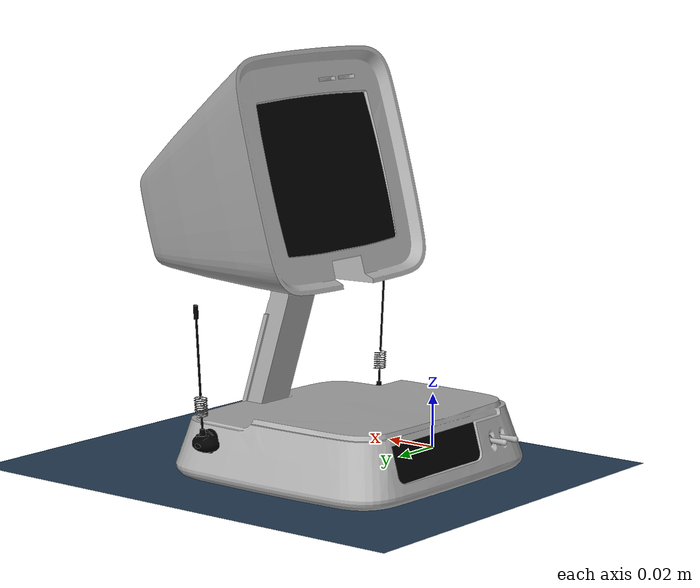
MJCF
<mujoco model="cone_robot_scene">

  <include file="cone_robot.xml"/>

  <statistic center="0 0 0.1" extent="0.4"/>

  <visual>
    <headlight diffuse="0.6 0.6 0.6" ambient="0.3 0.3 0.3" specular="0 0 0"/>
    <rgba haze="0.15 0.25 0.35 1"/>
    <global azimuth="120" elevation="-20"/>
  </visual>

  <asset>

    <texture type="skybox" builtin="gradient" rgb1="0.3 0.5 0.7" rgb2="0 0 0" width="512" height="3072"/>
    <texture type="2d" name="groundplane" builtin="checker" mark="edge" rgb1="0.2 0.3 0.4" rgb2="0.1 0.2 0.3"
      markrgb="0.8 0.8 0.8" width="300" height="300"/>

    <material name="groundplane" texture="groundplane" texuniform="true" texrepeat="5 5" reflectance="0.2"/>

  </asset>

  <worldbody>

    <light pos="0 0 1.5" dir="0 0 -1" directional="true"/>
    <geom name="floor" size="0 0 0.05" type="plane" material="groundplane"/>

  </worldbody>

</mujoco>

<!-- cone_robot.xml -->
<mujoco>

    <compiler angle="degree" coordinate="local"/>
    <option timestep="0.002" iterations="100" tolerance="1e-10"/>

    <!-- ADDED: Keyframe definition for the "Home" position -->
    <!-- qpos values correspond to the order of joints defined below -->
    <!-- Order: j_top_y, j_top_z, j_top_cam, j_top_ant_r, j_top_ant_l -->

    <keyframe>
        <key name="home" qpos="1.85 0 0 1.52 1.52" ctrl="2.1 0 0 15 15"/> <!-- closed position-->
        <key name="open" qpos="0 0 0 0 0" ctrl="0 0 0 0 0"/>
    </keyframe>

    <asset>
        <mesh name="bottom_mesh" file="../meshes/bottom1.stl"/>
        <mesh name="top_mesh" file="../meshes/top.stl"/>
        <mesh name="ant_r_mesh" file="../meshes/antenna_r.stl"/>
        <mesh name="ant_l_mesh" file="../meshes/antenna_l.stl"/>
        <mesh name="camera_mesh" file="../meshes/camera.stl"/>

        <texture name="display_top" type="2d" builtin="checker" width="512" height="512" rgb1="0 0 0" rgb2="0 0 0"/>
        <material name="display_matt" texture="display_top" specular="0.1" shininess="0.1" emission="3"/>

        <texture name="display_bottom"  type="2d" builtin="checker" width="512" height="256" rgb1="0 0 0" rgb2="0 0 0"/>
        <material name="display_matb" texture="display_bottom" specular="0.5" shininess="0.5"/>
    </asset>
    <worldbody>
        <body name="bottom" pos="0 0 0.024" euler="0 0 180">

            <geom type="mesh" mesh="bottom_mesh" rgba="0.7 0.7 0.7 1" density="300"/>
            <geom name="bottom_screen" type="box" size="0.0235 0.0066 0.0001" material="display_matb" pos="0.0445 -0.0577 -0.00875" euler="0 74 90.3"/>

            <body name="top" pos="-0.008 0 0.01">

                <joint name="j_top_y" type="hinge" axis="0 1 0" range="0 106" damping="4" stiffness="10" armature="0.000001" pos="-0.027 -0.01 0.03"/>
                <joint name="j_top_z" type="hinge" axis="0 0 1" range="-10 10" damping="20" stiffness="10" armature="0.01" pos="-0.027 -0.049 -0.01"/>

                <geom type="mesh" mesh="top_mesh" rgba="0.7 0.7 0.7 1" density="300"/>
                <geom name="screen_geom" type="box" size="0.032 0.0278 0.0001" material="display_matt" pos="-0.003 -0.0492 0.0728" euler="0 74 90" mass="0"/>

                <body name="camera" pos="0.002 0 0.015">

                    <camera name="camera_top" pos="-0.025 0 0.1" euler="0 150 90"/>

                    <joint name="j_top_cam" type="hinge" pos="-0.015 0 0.097" range="0 90" damping="10" stiffness="50" armature="0.01" axis="0 1 0"/>

                    <geom type="mesh" mesh="camera_mesh" rgba="0.1 0.5 0.7 1"/>

                </body>

            </body>

            <body name="antenna_right" pos="0 0 0.002">

                <joint name="j_top_ant_r" type="hinge" axis="0 1 0" range="0 180" damping="0.1" stiffness="50" springref="10" pos="-0.025 -0.08 -0.01"/>

                <geom type="mesh" mesh="ant_r_mesh" rgba="0 0 0 1"/>

            </body>

            <body name="antenna_left" pos="0 0 0.002">

                <joint name="j_top_ant_l" type="hinge" axis="0 1 0" range="0 180" damping="0.1" stiffness="50" springref="10" pos="-0.027 0.08 -0.01"/>

                <geom type="mesh" mesh="ant_l_mesh" rgba="0 0 0 1"/>

            </body>

        </body>

    </worldbody>

    <actuator>

        <position name="servo_top_y"   joint="j_top_y"        kp="100"  ctrlrange="0 2.1"/>

        <position name="servo_top_z"   joint="j_top_z"        kp="90"   ctrlrange="-0.5 0.5"/>

        <position name="servo_top_com" joint="j_top_cam"      kp="50"   ctrlrange="0 3.5" />

        <position name="servo_ant_r"   joint="j_top_ant_r"    kp="5"    ctrlrange = "-10 15" />

        <position name="servo_ant_l"   joint="j_top_ant_l"    kp="5"    ctrlrange = "-10 15" />

    </actuator>

</mujoco>
